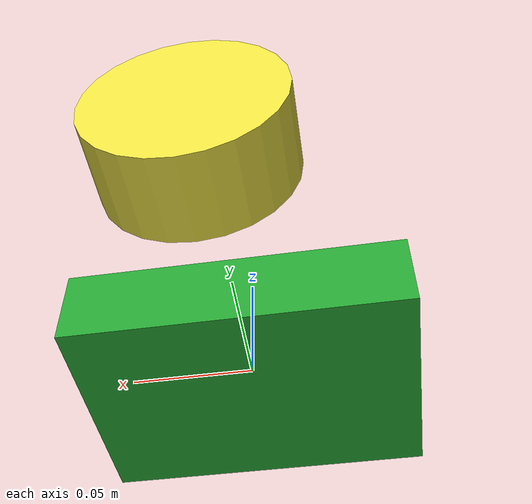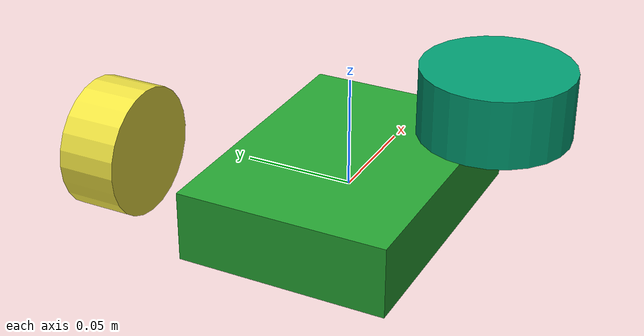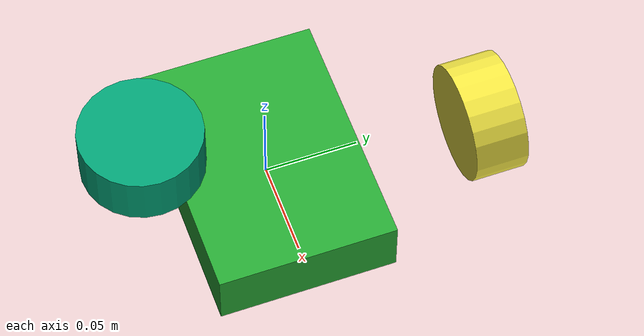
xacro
<?xml version="1.0"?>
<robot xmlns:xacro="http://www.ros.org/wiki/xacro" name="jetbot_mirea">

    <xacro:include filename="common_properties.xacro"/>

    <link name="base_footprint"/>

    <joint name="base_joint" type="fixed">
        <parent link="base_footprint"/>
        <child link="base_link"/>
        <origin xyz="0.0 0.0 0.0" rpy="0 0 0"/>
    </joint>

    <link name="base_link">
        <visual>
            <origin xyz="0.0 0.0 0.0" rpy="0 0 0"/>
            <geometry>
                <box size="0.132 0.095 0.032"/>
            </geometry>
            <material name="acid_green"/>
        </visual>

        <collision>
            <origin xyz="0.0 0.0 0.0" rpy="0 0 0"/>
            <geometry>
                <box size="0.132 0.095 0.032"/>
            </geometry>
        </collision>

        <xacro:inertial_box mass="0.005" x="0.132" y="0.095" z="0.032">
            <origin xyz="0.0 0.0 0.0" rpy="0 0 0"/>
        </xacro:inertial_box>

    </link>

    <joint name="wheel_left_joint" type="continuous">
        <parent link="base_link"/>
        <child link="wheel_left_link"/>
        <origin xyz="0.0 -0.06 -0.005" rpy="-1.57 0 0"/>
        <axis xyz="0 0 1"/>
    </joint>

    <link name="wheel_left_link">
        <visual>
            <origin xyz="0 -0.06 -0.005" rpy="1.57 0 0"/>
            <geometry>
                <cylinder length="0.029" radius="0.032"/>
            </geometry>
            <material name="dark"/>
        </visual>

        <collision>
            <origin xyz="0 -0.06 -0.005" rpy="0 0 0"/>
            <geometry>
                <cylinder length="0.029" radius="0.032"/>
            </geometry>
        </collision>

        <xacro:inertial_cylinder mass="0.001" length="0.029" radius="0.032">
            <origin xyz="0.0 -0.06 -0.005" rpy="0.0 0.0 0.0"/>
        </xacro:inertial_cylinder>

    </link>

    <joint name="wheel_right_joint" type="continuous">
        <parent link="base_link"/>
        <child link="wheel_right_link"/>
        <origin xyz="0 0.06 -0.005" rpy="0 0 0"/>
        <axis xyz="0 0 1"/>
    </joint>

    <link name="wheel_right_link">
        <visual>
            <origin xyz="0 0.06 -0.005" rpy="-1.57 0 0"/>
            <geometry>
                <cylinder length="0.029" radius="0.032"/>
            </geometry>
            <material name="dark"/>
        </visual>

        <collision>
            <origin xyz="0 0.06 -0.005" rpy="1.57 0 0"/>
            <geometry>
                <cylinder length="0.029" radius="0.032"/>
            </geometry>
        </collision>

        <xacro:inertial_cylinder mass="0.0010" length="0.029" radius="0.032">
            <origin xyz="0 0.06 -0.005" rpy="0 0 0"/>
        </xacro:inertial_cylinder>
    </link>
</robot>
